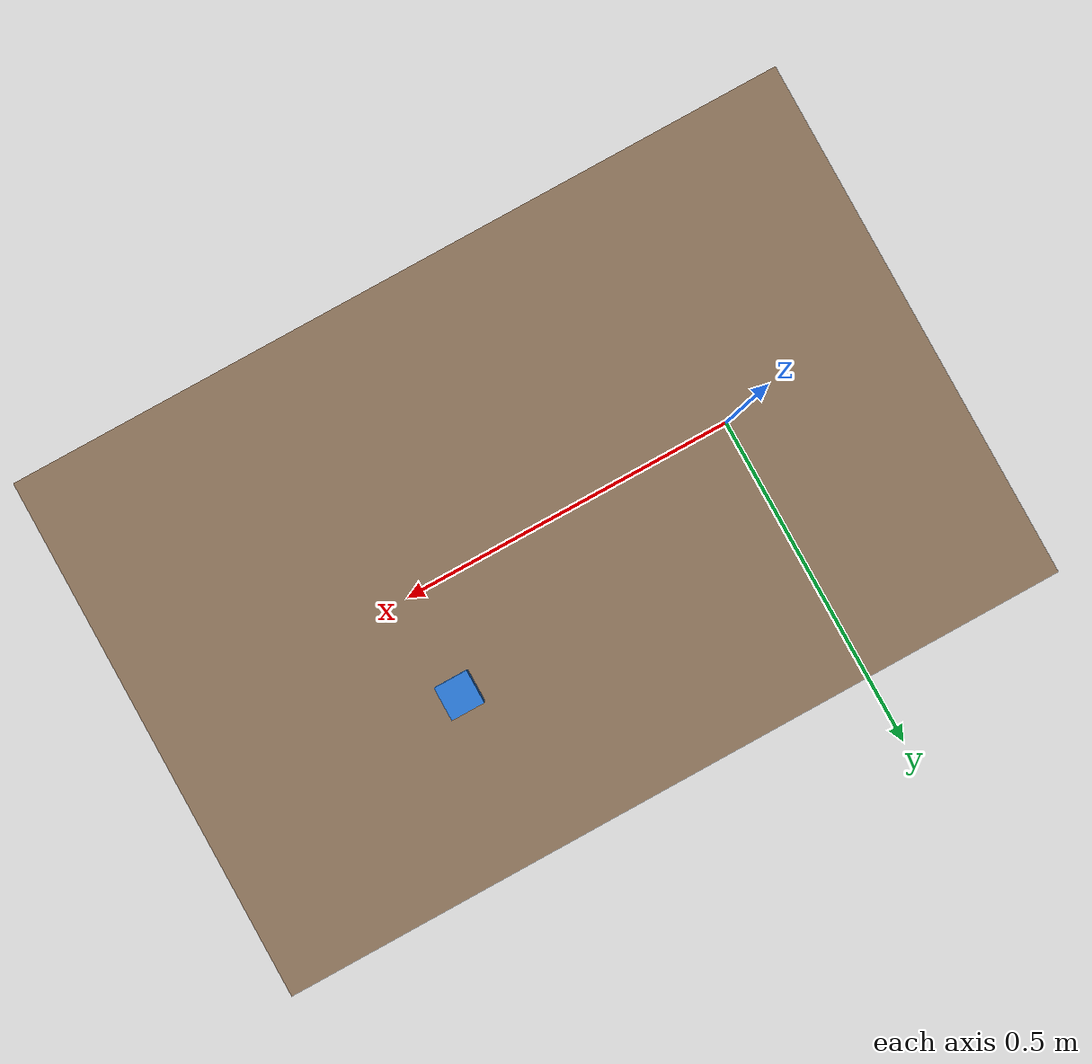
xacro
<?xml version="1.0"?>
<robot name="cell" xmlns:xacro="http://www.ros.org/wiki/xacro">
  <link name="fer_link0"/>

  <!-- A box hanging from the base of the robot -->
  <xacro:macro name="box" params="name size xyz rpy:='0 0 0' rgba:='0.6 0.6 0.6 1'">
    <link name="${name}">
      <visual>
        <geometry>
          <box size="${size}"/>
        </geometry>
        <material name="${name}_color">
          <color rgba="${rgba}"/>
        </material>
      </visual>
    </link>
    <joint name="${name}_joint" type="fixed">
      <parent link="fer_link0"/>
      <child link="${name}"/>
      <origin xyz="${xyz}" rpy="${rpy}"/>
    </joint>
  </xacro:macro>

  <!-- The table the robot stands on: its top surface at z = 0 -->
  <xacro:box name="table" size="1.2 0.8 0.04" xyz="0.3 0 -0.02" rgba="0.55 0.45 0.35 1"/>
  <!-- A part on the table, 5 cm wide -->
  <xacro:box name="part" size="0.05 0.05 0.05" xyz="0.5 0.15 0.025" rgba="0.16 0.47 0.84 1"/>
</robot>
